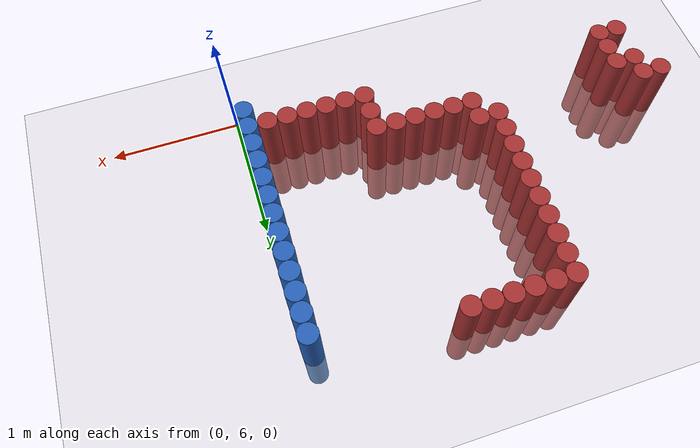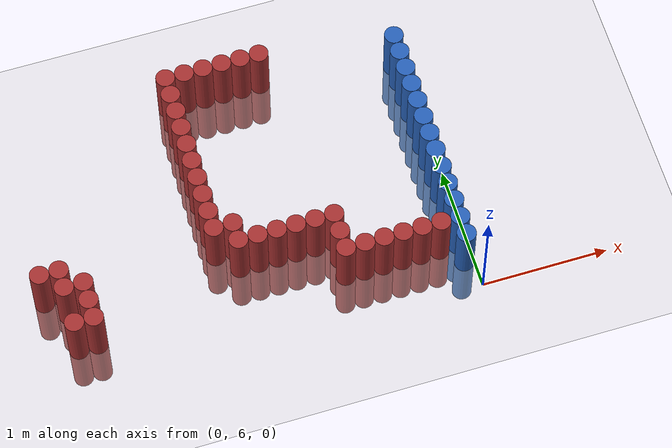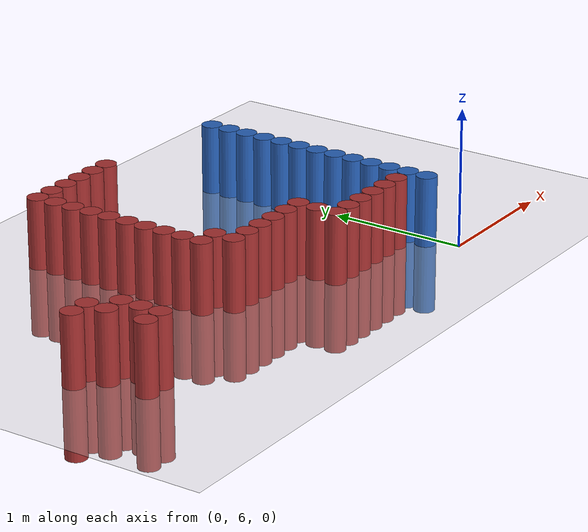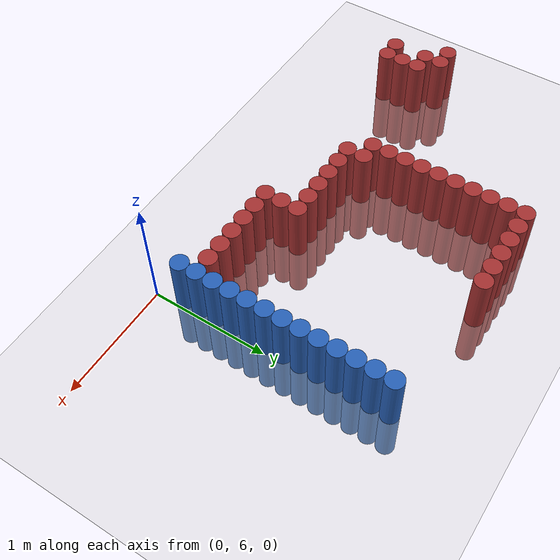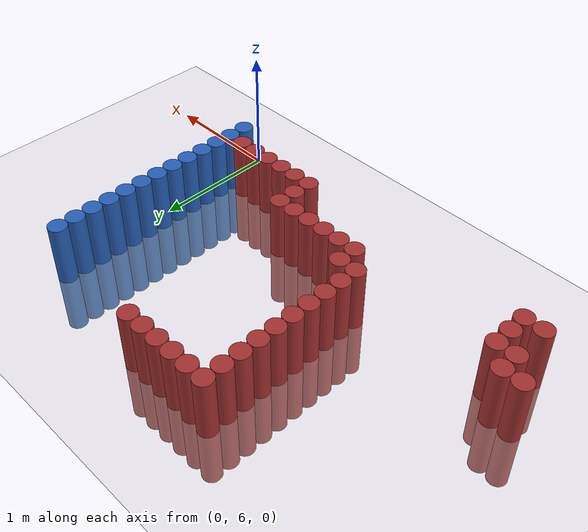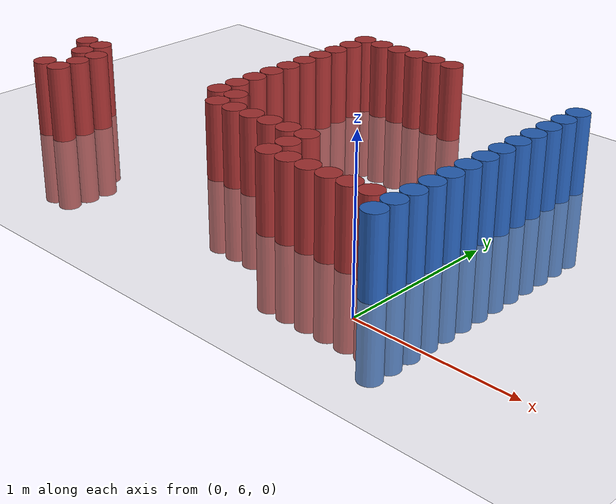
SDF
<sdf version="1.6">
 <world name="default">
  <model name="ground_plane">
   <static>1</static>
   <link name="link">
    <collision name="collision">
     <geometry><plane><normal>0 0 1</normal><size>100 100</size></plane></geometry>
     <surface><friction><ode><mu>100</mu><mu2>50</mu2></ode></friction></surface>
    </collision>
    <visual name="visual">
     <cast_shadows>0</cast_shadows>
     <geometry><plane><normal>0 0 1</normal><size>100 100</size></plane></geometry>
     <material>
      <script><uri>file://media/materials/scripts/gazebo.material</uri><name>Gazebo/Grey</name></script>
     </material>
    </visual>
   </link>
  </model>
  <model name="unit_cylinder_166">
   <static>1</static>
   <pose>-3.225000 6.825000 0.000000 0.000000 0.000000 0.000000</pose>
   <link name="link">
    <inertial>
     <mass>1</mass>
     <inertia><ixx>0.145833</ixx><ixy>0</ixy><ixz>0</ixz><iyy>0.145833</iyy><iyz>0</iyz><izz>0.125</izz></inertia>
    </inertial>
    <collision name="collision">
     <geometry><cylinder><radius>0.075000</radius><length>1</length></cylinder></geometry>
    </collision>
    <visual name="visual">
     <geometry><cylinder><radius>0.075000</radius><length>1</length></cylinder></geometry>
     <material>
      <ambient>0.648000 0.192000 0.192000 1</ambient>
      <diffuse>0.648000 0.192000 0.192000 1</diffuse>
     </material>
     <material>
      <script><name>Gazebo/Grey</name><uri>file://media/materials/scripts/gazebo.material</uri></script>
     </material>
    </visual>
   </link>
  </model>
  <model name="unit_cylinder_174">
   <static>1</static>
   <pose>-3.075000 6.375000 0.000000 0.000000 0.000000 0.000000</pose>
   <link name="link">
    <inertial>
     <mass>1</mass>
     <inertia><ixx>0.145833</ixx><ixy>0</ixy><ixz>0</ixz><iyy>0.145833</iyy><iyz>0</iyz><izz>0.125</izz></inertia>
    </inertial>
    <collision name="collision">
     <geometry><cylinder><radius>0.075000</radius><length>1</length></cylinder></geometry>
    </collision>
    <visual name="visual">
     <geometry><cylinder><radius>0.075000</radius><length>1</length></cylinder></geometry>
     <material>
      <ambient>0.648000 0.192000 0.192000 1</ambient>
      <diffuse>0.648000 0.192000 0.192000 1</diffuse>
     </material>
     <material>
      <script><name>Gazebo/Grey</name><uri>file://media/materials/scripts/gazebo.material</uri></script>
     </material>
    </visual>
   </link>
  </model>
  <model name="unit_cylinder_175">
   <static>1</static>
   <pose>-3.075000 6.675000 0.000000 0.000000 0.000000 0.000000</pose>
   <link name="link">
    <inertial>
     <mass>1</mass>
     <inertia><ixx>0.145833</ixx><ixy>0</ixy><ixz>0</ixz><iyy>0.145833</iyy><iyz>0</iyz><izz>0.125</izz></inertia>
    </inertial>
    <collision name="collision">
     <geometry><cylinder><radius>0.075000</radius><length>1</length></cylinder></geometry>
    </collision>
    <visual name="visual">
     <geometry><cylinder><radius>0.075000</radius><length>1</length></cylinder></geometry>
     <material>
      <ambient>0.648000 0.192000 0.192000 1</ambient>
      <diffuse>0.648000 0.192000 0.192000 1</diffuse>
     </material>
     <material>
      <script><name>Gazebo/Grey</name><uri>file://media/materials/scripts/gazebo.material</uri></script>
     </material>
    </visual>
   </link>
  </model>
  <model name="unit_cylinder_176">
   <static>1</static>
   <pose>-3.075000 6.825000 0.000000 0.000000 0.000000 0.000000</pose>
   <link name="link">
    <inertial>
     <mass>1</mass>
     <inertia><ixx>0.145833</ixx><ixy>0</ixy><ixz>0</ixz><iyy>0.145833</iyy><iyz>0</iyz><izz>0.125</izz></inertia>
    </inertial>
    <collision name="collision">
     <geometry><cylinder><radius>0.075000</radius><length>1</length></cylinder></geometry>
    </collision>
    <visual name="visual">
     <geometry><cylinder><radius>0.075000</radius><length>1</length></cylinder></geometry>
     <material>
      <ambient>0.648000 0.192000 0.192000 1</ambient>
      <diffuse>0.648000 0.192000 0.192000 1</diffuse>
     </material>
     <material>
      <script><name>Gazebo/Grey</name><uri>file://media/materials/scripts/gazebo.material</uri></script>
     </material>
    </visual>
   </link>
  </model>
  <model name="unit_cylinder_179">
   <static>1</static>
   <pose>-2.925000 6.375000 0.000000 0.000000 0.000000 0.000000</pose>
   <link name="link">
    <inertial>
     <mass>1</mass>
     <inertia><ixx>0.145833</ixx><ixy>0</ixy><ixz>0</ixz><iyy>0.145833</iyy><iyz>0</iyz><izz>0.125</izz></inertia>
    </inertial>
    <collision name="collision">
     <geometry><cylinder><radius>0.075000</radius><length>1</length></cylinder></geometry>
    </collision>
    <visual name="visual">
     <geometry><cylinder><radius>0.075000</radius><length>1</length></cylinder></geometry>
     <material>
      <ambient>0.648000 0.192000 0.192000 1</ambient>
      <diffuse>0.648000 0.192000 0.192000 1</diffuse>
     </material>
     <material>
      <script><name>Gazebo/Grey</name><uri>file://media/materials/scripts/gazebo.material</uri></script>
     </material>
    </visual>
   </link>
  </model>
  <model name="unit_cylinder_180">
   <static>1</static>
   <pose>-2.925000 6.525000 0.000000 0.000000 0.000000 0.000000</pose>
   <link name="link">
    <inertial>
     <mass>1</mass>
     <inertia><ixx>0.145833</ixx><ixy>0</ixy><ixz>0</ixz><iyy>0.145833</iyy><iyz>0</iyz><izz>0.125</izz></inertia>
    </inertial>
    <collision name="collision">
     <geometry><cylinder><radius>0.075000</radius><length>1</length></cylinder></geometry>
    </collision>
    <visual name="visual">
     <geometry><cylinder><radius>0.075000</radius><length>1</length></cylinder></geometry>
     <material>
      <ambient>0.648000 0.192000 0.192000 1</ambient>
      <diffuse>0.648000 0.192000 0.192000 1</diffuse>
     </material>
     <material>
      <script><name>Gazebo/Grey</name><uri>file://media/materials/scripts/gazebo.material</uri></script>
     </material>
    </visual>
   </link>
  </model>
  <model name="unit_cylinder_181">
   <static>1</static>
   <pose>-2.925000 6.675000 0.000000 0.000000 0.000000 0.000000</pose>
   <link name="link">
    <inertial>
     <mass>1</mass>
     <inertia><ixx>0.145833</ixx><ixy>0</ixy><ixz>0</ixz><iyy>0.145833</iyy><iyz>0</iyz><izz>0.125</izz></inertia>
    </inertial>
    <collision name="collision">
     <geometry><cylinder><radius>0.075000</radius><length>1</length></cylinder></geometry>
    </collision>
    <visual name="visual">
     <geometry><cylinder><radius>0.075000</radius><length>1</length></cylinder></geometry>
     <material>
      <ambient>0.648000 0.192000 0.192000 1</ambient>
      <diffuse>0.648000 0.192000 0.192000 1</diffuse>
     </material>
     <material>
      <script><name>Gazebo/Grey</name><uri>file://media/materials/scripts/gazebo.material</uri></script>
     </material>
    </visual>
   </link>
  </model>
  <model name="unit_cylinder_186">
   <static>1</static>
   <pose>-1.875000 6.825000 0.000000 0.000000 0.000000 0.000000</pose>
   <link name="link">
    <inertial>
     <mass>1</mass>
     <inertia><ixx>0.145833</ixx><ixy>0</ixy><ixz>0</ixz><iyy>0.145833</iyy><iyz>0</iyz><izz>0.125</izz></inertia>
    </inertial>
    <collision name="collision">
     <geometry><cylinder><radius>0.075000</radius><length>1</length></cylinder></geometry>
    </collision>
    <visual name="visual">
     <geometry><cylinder><radius>0.075000</radius><length>1</length></cylinder></geometry>
     <material>
      <ambient>0.648000 0.192000 0.192000 1</ambient>
      <diffuse>0.648000 0.192000 0.192000 1</diffuse>
     </material>
     <material>
      <script><name>Gazebo/Grey</name><uri>file://media/materials/scripts/gazebo.material</uri></script>
     </material>
    </visual>
   </link>
  </model>
  <model name="unit_cylinder_187">
   <static>1</static>
   <pose>-1.875000 6.975000 0.000000 0.000000 0.000000 0.000000</pose>
   <link name="link">
    <inertial>
     <mass>1</mass>
     <inertia><ixx>0.145833</ixx><ixy>0</ixy><ixz>0</ixz><iyy>0.145833</iyy><iyz>0</iyz><izz>0.125</izz></inertia>
    </inertial>
    <collision name="collision">
     <geometry><cylinder><radius>0.075000</radius><length>1</length></cylinder></geometry>
    </collision>
    <visual name="visual">
     <geometry><cylinder><radius>0.075000</radius><length>1</length></cylinder></geometry>
     <material>
      <ambient>0.648000 0.192000 0.192000 1</ambient>
      <diffuse>0.648000 0.192000 0.192000 1</diffuse>
     </material>
     <material>
      <script><name>Gazebo/Grey</name><uri>file://media/materials/scripts/gazebo.material</uri></script>
     </material>
    </visual>
   </link>
  </model>
  <model name="unit_cylinder_188">
   <static>1</static>
   <pose>-1.875000 7.125000 0.000000 0.000000 0.000000 0.000000</pose>
   <link name="link">
    <inertial>
     <mass>1</mass>
     <inertia><ixx>0.145833</ixx><ixy>0</ixy><ixz>0</ixz><iyy>0.145833</iyy><iyz>0</iyz><izz>0.125</izz></inertia>
    </inertial>
    <collision name="collision">
     <geometry><cylinder><radius>0.075000</radius><length>1</length></cylinder></geometry>
    </collision>
    <visual name="visual">
     <geometry><cylinder><radius>0.075000</radius><length>1</length></cylinder></geometry>
     <material>
      <ambient>0.648000 0.192000 0.192000 1</ambient>
      <diffuse>0.648000 0.192000 0.192000 1</diffuse>
     </material>
     <material>
      <script><name>Gazebo/Grey</name><uri>file://media/materials/scripts/gazebo.material</uri></script>
     </material>
    </visual>
   </link>
  </model>
  <model name="unit_cylinder_189">
   <static>1</static>
   <pose>-1.875000 7.275000 0.000000 0.000000 0.000000 0.000000</pose>
   <link name="link">
    <inertial>
     <mass>1</mass>
     <inertia><ixx>0.145833</ixx><ixy>0</ixy><ixz>0</ixz><iyy>0.145833</iyy><iyz>0</iyz><izz>0.125</izz></inertia>
    </inertial>
    <collision name="collision">
     <geometry><cylinder><radius>0.075000</radius><length>1</length></cylinder></geometry>
    </collision>
    <visual name="visual">
     <geometry><cylinder><radius>0.075000</radius><length>1</length></cylinder></geometry>
     <material>
      <ambient>0.648000 0.192000 0.192000 1</ambient>
      <diffuse>0.648000 0.192000 0.192000 1</diffuse>
     </material>
     <material>
      <script><name>Gazebo/Grey</name><uri>file://media/materials/scripts/gazebo.material</uri></script>
     </material>
    </visual>
   </link>
  </model>
  <model name="unit_cylinder_190">
   <static>1</static>
   <pose>-1.875000 7.425000 0.000000 0.000000 0.000000 0.000000</pose>
   <link name="link">
    <inertial>
     <mass>1</mass>
     <inertia><ixx>0.145833</ixx><ixy>0</ixy><ixz>0</ixz><iyy>0.145833</iyy><iyz>0</iyz><izz>0.125</izz></inertia>
    </inertial>
    <collision name="collision">
     <geometry><cylinder><radius>0.075000</radius><length>1</length></cylinder></geometry>
    </collision>
    <visual name="visual">
     <geometry><cylinder><radius>0.075000</radius><length>1</length></cylinder></geometry>
     <material>
      <ambient>0.648000 0.192000 0.192000 1</ambient>
      <diffuse>0.648000 0.192000 0.192000 1</diffuse>
     </material>
     <material>
      <script><name>Gazebo/Grey</name><uri>file://media/materials/scripts/gazebo.material</uri></script>
     </material>
    </visual>
   </link>
  </model>
  <model name="unit_cylinder_191">
   <static>1</static>
   <pose>-1.875000 7.575000 0.000000 0.000000 0.000000 0.000000</pose>
   <link name="link">
    <inertial>
     <mass>1</mass>
     <inertia><ixx>0.145833</ixx><ixy>0</ixy><ixz>0</ixz><iyy>0.145833</iyy><iyz>0</iyz><izz>0.125</izz></inertia>
    </inertial>
    <collision name="collision">
     <geometry><cylinder><radius>0.075000</radius><length>1</length></cylinder></geometry>
    </collision>
    <visual name="visual">
     <geometry><cylinder><radius>0.075000</radius><length>1</length></cylinder></geometry>
     <material>
      <ambient>0.648000 0.192000 0.192000 1</ambient>
      <diffuse>0.648000 0.192000 0.192000 1</diffuse>
     </material>
     <material>
      <script><name>Gazebo/Grey</name><uri>file://media/materials/scripts/gazebo.material</uri></script>
     </material>
    </visual>
   </link>
  </model>
  <model name="unit_cylinder_192">
   <static>1</static>
   <pose>-1.875000 7.725000 0.000000 0.000000 0.000000 0.000000</pose>
   <link name="link">
    <inertial>
     <mass>1</mass>
     <inertia><ixx>0.145833</ixx><ixy>0</ixy><ixz>0</ixz><iyy>0.145833</iyy><iyz>0</iyz><izz>0.125</izz></inertia>
    </inertial>
    <collision name="collision">
     <geometry><cylinder><radius>0.075000</radius><length>1</length></cylinder></geometry>
    </collision>
    <visual name="visual">
     <geometry><cylinder><radius>0.075000</radius><length>1</length></cylinder></geometry>
     <material>
      <ambient>0.648000 0.192000 0.192000 1</ambient>
      <diffuse>0.648000 0.192000 0.192000 1</diffuse>
     </material>
     <material>
      <script><name>Gazebo/Grey</name><uri>file://media/materials/scripts/gazebo.material</uri></script>
     </material>
    </visual>
   </link>
  </model>
  <model name="unit_cylinder_193">
   <static>1</static>
   <pose>-1.875000 7.875000 0.000000 0.000000 0.000000 0.000000</pose>
   <link name="link">
    <inertial>
     <mass>1</mass>
     <inertia><ixx>0.145833</ixx><ixy>0</ixy><ixz>0</ixz><iyy>0.145833</iyy><iyz>0</iyz><izz>0.125</izz></inertia>
    </inertial>
    <collision name="collision">
     <geometry><cylinder><radius>0.075000</radius><length>1</length></cylinder></geometry>
    </collision>
    <visual name="visual">
     <geometry><cylinder><radius>0.075000</radius><length>1</length></cylinder></geometry>
     <material>
      <ambient>0.648000 0.192000 0.192000 1</ambient>
      <diffuse>0.648000 0.192000 0.192000 1</diffuse>
     </material>
     <material>
      <script><name>Gazebo/Grey</name><uri>file://media/materials/scripts/gazebo.material</uri></script>
     </material>
    </visual>
   </link>
  </model>
  <model name="unit_cylinder_194">
   <static>1</static>
   <pose>-1.875000 8.025000 0.000000 0.000000 0.000000 0.000000</pose>
   <link name="link">
    <inertial>
     <mass>1</mass>
     <inertia><ixx>0.145833</ixx><ixy>0</ixy><ixz>0</ixz><iyy>0.145833</iyy><iyz>0</iyz><izz>0.125</izz></inertia>
    </inertial>
    <collision name="collision">
     <geometry><cylinder><radius>0.075000</radius><length>1</length></cylinder></geometry>
    </collision>
    <visual name="visual">
     <geometry><cylinder><radius>0.075000</radius><length>1</length></cylinder></geometry>
     <material>
      <ambient>0.648000 0.192000 0.192000 1</ambient>
      <diffuse>0.648000 0.192000 0.192000 1</diffuse>
     </material>
     <material>
      <script><name>Gazebo/Grey</name><uri>file://media/materials/scripts/gazebo.material</uri></script>
     </material>
    </visual>
   </link>
  </model>
  <model name="unit_cylinder_195">
   <static>1</static>
   <pose>-1.875000 8.175000 0.000000 0.000000 0.000000 0.000000</pose>
   <link name="link">
    <inertial>
     <mass>1</mass>
     <inertia><ixx>0.145833</ixx><ixy>0</ixy><ixz>0</ixz><iyy>0.145833</iyy><iyz>0</iyz><izz>0.125</izz></inertia>
    </inertial>
    <collision name="collision">
     <geometry><cylinder><radius>0.075000</radius><length>1</length></cylinder></geometry>
    </collision>
    <visual name="visual">
     <geometry><cylinder><radius>0.075000</radius><length>1</length></cylinder></geometry>
     <material>
      <ambient>0.648000 0.192000 0.192000 1</ambient>
      <diffuse>0.648000 0.192000 0.192000 1</diffuse>
     </material>
     <material>
      <script><name>Gazebo/Grey</name><uri>file://media/materials/scripts/gazebo.material</uri></script>
     </material>
    </visual>
   </link>
  </model>
  <model name="unit_cylinder_196">
   <static>1</static>
   <pose>-1.725000 6.675000 0.000000 0.000000 0.000000 0.000000</pose>
   <link name="link">
    <inertial>
     <mass>1</mass>
     <inertia><ixx>0.145833</ixx><ixy>0</ixy><ixz>0</ixz><iyy>0.145833</iyy><iyz>0</iyz><izz>0.125</izz></inertia>
    </inertial>
    <collision name="collision">
     <geometry><cylinder><radius>0.075000</radius><length>1</length></cylinder></geometry>
    </collision>
    <visual name="visual">
     <geometry><cylinder><radius>0.075000</radius><length>1</length></cylinder></geometry>
     <material>
      <ambient>0.648000 0.192000 0.192000 1</ambient>
      <diffuse>0.648000 0.192000 0.192000 1</diffuse>
     </material>
     <material>
      <script><name>Gazebo/Grey</name><uri>file://media/materials/scripts/gazebo.material</uri></script>
     </material>
    </visual>
   </link>
  </model>
  <model name="unit_cylinder_197">
   <static>1</static>
   <pose>-1.725000 6.825000 0.000000 0.000000 0.000000 0.000000</pose>
   <link name="link">
    <inertial>
     <mass>1</mass>
     <inertia><ixx>0.145833</ixx><ixy>0</ixy><ixz>0</ixz><iyy>0.145833</iyy><iyz>0</iyz><izz>0.125</izz></inertia>
    </inertial>
    <collision name="collision">
     <geometry><cylinder><radius>0.075000</radius><length>1</length></cylinder></geometry>
    </collision>
    <visual name="visual">
     <geometry><cylinder><radius>0.075000</radius><length>1</length></cylinder></geometry>
     <material>
      <ambient>0.648000 0.192000 0.192000 1</ambient>
      <diffuse>0.648000 0.192000 0.192000 1</diffuse>
     </material>
     <material>
      <script><name>Gazebo/Grey</name><uri>file://media/materials/scripts/gazebo.material</uri></script>
     </material>
    </visual>
   </link>
  </model>
  <model name="unit_cylinder_198">
   <static>1</static>
   <pose>-1.725000 8.175000 0.000000 0.000000 0.000000 0.000000</pose>
   <link name="link">
    <inertial>
     <mass>1</mass>
     <inertia><ixx>0.145833</ixx><ixy>0</ixy><ixz>0</ixz><iyy>0.145833</iyy><iyz>0</iyz><izz>0.125</izz></inertia>
    </inertial>
    <collision name="collision">
     <geometry><cylinder><radius>0.075000</radius><length>1</length></cylinder></geometry>
    </collision>
    <visual name="visual">
     <geometry><cylinder><radius>0.075000</radius><length>1</length></cylinder></geometry>
     <material>
      <ambient>0.648000 0.192000 0.192000 1</ambient>
      <diffuse>0.648000 0.192000 0.192000 1</diffuse>
     </material>
     <material>
      <script><name>Gazebo/Grey</name><uri>file://media/materials/scripts/gazebo.material</uri></script>
     </material>
    </visual>
   </link>
  </model>
  <model name="unit_cylinder_204">
   <static>1</static>
   <pose>-1.575000 6.675000 0.000000 0.000000 0.000000 0.000000</pose>
   <link name="link">
    <inertial>
     <mass>1</mass>
     <inertia><ixx>0.145833</ixx><ixy>0</ixy><ixz>0</ixz><iyy>0.145833</iyy><iyz>0</iyz><izz>0.125</izz></inertia>
    </inertial>
    <collision name="collision">
     <geometry><cylinder><radius>0.075000</radius><length>1</length></cylinder></geometry>
    </collision>
    <visual name="visual">
     <geometry><cylinder><radius>0.075000</radius><length>1</length></cylinder></geometry>
     <material>
      <ambient>0.648000 0.192000 0.192000 1</ambient>
      <diffuse>0.648000 0.192000 0.192000 1</diffuse>
     </material>
     <material>
      <script><name>Gazebo/Grey</name><uri>file://media/materials/scripts/gazebo.material</uri></script>
     </material>
    </visual>
   </link>
  </model>
  <model name="unit_cylinder_205">
   <static>1</static>
   <pose>-1.575000 8.175000 0.000000 0.000000 0.000000 0.000000</pose>
   <link name="link">
    <inertial>
     <mass>1</mass>
     <inertia><ixx>0.145833</ixx><ixy>0</ixy><ixz>0</ixz><iyy>0.145833</iyy><iyz>0</iyz><izz>0.125</izz></inertia>
    </inertial>
    <collision name="collision">
     <geometry><cylinder><radius>0.075000</radius><length>1</length></cylinder></geometry>
    </collision>
    <visual name="visual">
     <geometry><cylinder><radius>0.075000</radius><length>1</length></cylinder></geometry>
     <material>
      <ambient>0.648000 0.192000 0.192000 1</ambient>
      <diffuse>0.648000 0.192000 0.192000 1</diffuse>
     </material>
     <material>
      <script><name>Gazebo/Grey</name><uri>file://media/materials/scripts/gazebo.material</uri></script>
     </material>
    </visual>
   </link>
  </model>
  <model name="unit_cylinder_208">
   <static>1</static>
   <pose>-1.425000 6.675000 0.000000 0.000000 0.000000 0.000000</pose>
   <link name="link">
    <inertial>
     <mass>1</mass>
     <inertia><ixx>0.145833</ixx><ixy>0</ixy><ixz>0</ixz><iyy>0.145833</iyy><iyz>0</iyz><izz>0.125</izz></inertia>
    </inertial>
    <collision name="collision">
     <geometry><cylinder><radius>0.075000</radius><length>1</length></cylinder></geometry>
    </collision>
    <visual name="visual">
     <geometry><cylinder><radius>0.075000</radius><length>1</length></cylinder></geometry>
     <material>
      <ambient>0.648000 0.192000 0.192000 1</ambient>
      <diffuse>0.648000 0.192000 0.192000 1</diffuse>
     </material>
     <material>
      <script><name>Gazebo/Grey</name><uri>file://media/materials/scripts/gazebo.material</uri></script>
     </material>
    </visual>
   </link>
  </model>
  <model name="unit_cylinder_209">
   <static>1</static>
   <pose>-1.425000 8.175000 0.000000 0.000000 0.000000 0.000000</pose>
   <link name="link">
    <inertial>
     <mass>1</mass>
     <inertia><ixx>0.145833</ixx><ixy>0</ixy><ixz>0</ixz><iyy>0.145833</iyy><iyz>0</iyz><izz>0.125</izz></inertia>
    </inertial>
    <collision name="collision">
     <geometry><cylinder><radius>0.075000</radius><length>1</length></cylinder></geometry>
    </collision>
    <visual name="visual">
     <geometry><cylinder><radius>0.075000</radius><length>1</length></cylinder></geometry>
     <material>
      <ambient>0.648000 0.192000 0.192000 1</ambient>
      <diffuse>0.648000 0.192000 0.192000 1</diffuse>
     </material>
     <material>
      <script><name>Gazebo/Grey</name><uri>file://media/materials/scripts/gazebo.material</uri></script>
     </material>
    </visual>
   </link>
  </model>
  <model name="unit_cylinder_213">
   <static>1</static>
   <pose>-1.275000 6.675000 0.000000 0.000000 0.000000 0.000000</pose>
   <link name="link">
    <inertial>
     <mass>1</mass>
     <inertia><ixx>0.145833</ixx><ixy>0</ixy><ixz>0</ixz><iyy>0.145833</iyy><iyz>0</iyz><izz>0.125</izz></inertia>
    </inertial>
    <collision name="collision">
     <geometry><cylinder><radius>0.075000</radius><length>1</length></cylinder></geometry>
    </collision>
    <visual name="visual">
     <geometry><cylinder><radius>0.075000</radius><length>1</length></cylinder></geometry>
     <material>
      <ambient>0.648000 0.192000 0.192000 1</ambient>
      <diffuse>0.648000 0.192000 0.192000 1</diffuse>
     </material>
     <material>
      <script><name>Gazebo/Grey</name><uri>file://media/materials/scripts/gazebo.material</uri></script>
     </material>
    </visual>
   </link>
  </model>
  <model name="unit_cylinder_214">
   <static>1</static>
   <pose>-1.275000 8.175000 0.000000 0.000000 0.000000 0.000000</pose>
   <link name="link">
    <inertial>
     <mass>1</mass>
     <inertia><ixx>0.145833</ixx><ixy>0</ixy><ixz>0</ixz><iyy>0.145833</iyy><iyz>0</iyz><izz>0.125</izz></inertia>
    </inertial>
    <collision name="collision">
     <geometry><cylinder><radius>0.075000</radius><length>1</length></cylinder></geometry>
    </collision>
    <visual name="visual">
     <geometry><cylinder><radius>0.075000</radius><length>1</length></cylinder></geometry>
     <material>
      <ambient>0.648000 0.192000 0.192000 1</ambient>
      <diffuse>0.648000 0.192000 0.192000 1</diffuse>
     </material>
     <material>
      <script><name>Gazebo/Grey</name><uri>file://media/materials/scripts/gazebo.material</uri></script>
     </material>
    </visual>
   </link>
  </model>
  <model name="unit_cylinder_218">
   <static>1</static>
   <pose>-1.125000 6.675000 0.000000 0.000000 0.000000 0.000000</pose>
   <link name="link">
    <inertial>
     <mass>1</mass>
     <inertia><ixx>0.145833</ixx><ixy>0</ixy><ixz>0</ixz><iyy>0.145833</iyy><iyz>0</iyz><izz>0.125</izz></inertia>
    </inertial>
    <collision name="collision">
     <geometry><cylinder><radius>0.075000</radius><length>1</length></cylinder></geometry>
    </collision>
    <visual name="visual">
     <geometry><cylinder><radius>0.075000</radius><length>1</length></cylinder></geometry>
     <material>
      <ambient>0.648000 0.192000 0.192000 1</ambient>
      <diffuse>0.648000 0.192000 0.192000 1</diffuse>
     </material>
     <material>
      <script><name>Gazebo/Grey</name><uri>file://media/materials/scripts/gazebo.material</uri></script>
     </material>
    </visual>
   </link>
  </model>
  <model name="unit_cylinder_219">
   <static>1</static>
   <pose>-1.125000 8.175000 0.000000 0.000000 0.000000 0.000000</pose>
   <link name="link">
    <inertial>
     <mass>1</mass>
     <inertia><ixx>0.145833</ixx><ixy>0</ixy><ixz>0</ixz><iyy>0.145833</iyy><iyz>0</iyz><izz>0.125</izz></inertia>
    </inertial>
    <collision name="collision">
     <geometry><cylinder><radius>0.075000</radius><length>1</length></cylinder></geometry>
    </collision>
    <visual name="visual">
     <geometry><cylinder><radius>0.075000</radius><length>1</length></cylinder></geometry>
     <material>
      <ambient>0.648000 0.192000 0.192000 1</ambient>
      <diffuse>0.648000 0.192000 0.192000 1</diffuse>
     </material>
     <material>
      <script><name>Gazebo/Grey</name><uri>file://media/materials/scripts/gazebo.material</uri></script>
     </material>
    </visual>
   </link>
  </model>
  <model name="unit_cylinder_227">
   <static>1</static>
   <pose>-0.975000 6.375000 0.000000 0.000000 0.000000 0.000000</pose>
   <link name="link">
    <inertial>
     <mass>1</mass>
     <inertia><ixx>0.145833</ixx><ixy>0</ixy><ixz>0</ixz><iyy>0.145833</iyy><iyz>0</iyz><izz>0.125</izz></inertia>
    </inertial>
    <collision name="collision">
     <geometry><cylinder><radius>0.075000</radius><length>1</length></cylinder></geometry>
    </collision>
    <visual name="visual">
     <geometry><cylinder><radius>0.075000</radius><length>1</length></cylinder></geometry>
     <material>
      <ambient>0.648000 0.192000 0.192000 1</ambient>
      <diffuse>0.648000 0.192000 0.192000 1</diffuse>
     </material>
     <material>
      <script><name>Gazebo/Grey</name><uri>file://media/materials/scripts/gazebo.material</uri></script>
     </material>
    </visual>
   </link>
  </model>
  <model name="unit_cylinder_228">
   <static>1</static>
   <pose>-0.975000 6.525000 0.000000 0.000000 0.000000 0.000000</pose>
   <link name="link">
    <inertial>
     <mass>1</mass>
     <inertia><ixx>0.145833</ixx><ixy>0</ixy><ixz>0</ixz><iyy>0.145833</iyy><iyz>0</iyz><izz>0.125</izz></inertia>
    </inertial>
    <collision name="collision">
     <geometry><cylinder><radius>0.075000</radius><length>1</length></cylinder></geometry>
    </collision>
    <visual name="visual">
     <geometry><cylinder><radius>0.075000</radius><length>1</length></cylinder></geometry>
     <material>
      <ambient>0.648000 0.192000 0.192000 1</ambient>
      <diffuse>0.648000 0.192000 0.192000 1</diffuse>
     </material>
     <material>
      <script><name>Gazebo/Grey</name><uri>file://media/materials/scripts/gazebo.material</uri></script>
     </material>
    </visual>
   </link>
  </model>
  <model name="unit_cylinder_229">
   <static>1</static>
   <pose>-0.975000 6.675000 0.000000 0.000000 0.000000 0.000000</pose>
   <link name="link">
    <inertial>
     <mass>1</mass>
     <inertia><ixx>0.145833</ixx><ixy>0</ixy><ixz>0</ixz><iyy>0.145833</iyy><iyz>0</iyz><izz>0.125</izz></inertia>
    </inertial>
    <collision name="collision">
     <geometry><cylinder><radius>0.075000</radius><length>1</length></cylinder></geometry>
    </collision>
    <visual name="visual">
     <geometry><cylinder><radius>0.075000</radius><length>1</length></cylinder></geometry>
     <material>
      <ambient>0.648000 0.192000 0.192000 1</ambient>
      <diffuse>0.648000 0.192000 0.192000 1</diffuse>
     </material>
     <material>
      <script><name>Gazebo/Grey</name><uri>file://media/materials/scripts/gazebo.material</uri></script>
     </material>
    </visual>
   </link>
  </model>
  <model name="unit_cylinder_236">
   <static>1</static>
   <pose>-0.825000 6.375000 0.000000 0.000000 0.000000 0.000000</pose>
   <link name="link">
    <inertial>
     <mass>1</mass>
     <inertia><ixx>0.145833</ixx><ixy>0</ixy><ixz>0</ixz><iyy>0.145833</iyy><iyz>0</iyz><izz>0.125</izz></inertia>
    </inertial>
    <collision name="collision">
     <geometry><cylinder><radius>0.075000</radius><length>1</length></cylinder></geometry>
    </collision>
    <visual name="visual">
     <geometry><cylinder><radius>0.075000</radius><length>1</length></cylinder></geometry>
     <material>
      <ambient>0.648000 0.192000 0.192000 1</ambient>
      <diffuse>0.648000 0.192000 0.192000 1</diffuse>
     </material>
     <material>
      <script><name>Gazebo/Grey</name><uri>file://media/materials/scripts/gazebo.material</uri></script>
     </material>
    </visual>
   </link>
  </model>
  <model name="unit_cylinder_243">
   <static>1</static>
   <pose>-0.675000 6.375000 0.000000 0.000000 0.000000 0.000000</pose>
   <link name="link">
    <inertial>
     <mass>1</mass>
     <inertia><ixx>0.145833</ixx><ixy>0</ixy><ixz>0</ixz><iyy>0.145833</iyy><iyz>0</iyz><izz>0.125</izz></inertia>
    </inertial>
    <collision name="collision">
     <geometry><cylinder><radius>0.075000</radius><length>1</length></cylinder></geometry>
    </collision>
    <visual name="visual">
     <geometry><cylinder><radius>0.075000</radius><length>1</length></cylinder></geometry>
     <material>
      <ambient>0.648000 0.192000 0.192000 1</ambient>
      <diffuse>0.648000 0.192000 0.192000 1</diffuse>
     </material>
     <material>
      <script><name>Gazebo/Grey</name><uri>file://media/materials/scripts/gazebo.material</uri></script>
     </material>
    </visual>
   </link>
  </model>
  <model name="unit_cylinder_250">
   <static>1</static>
   <pose>-0.525000 6.375000 0.000000 0.000000 0.000000 0.000000</pose>
   <link name="link">
    <inertial>
     <mass>1</mass>
     <inertia><ixx>0.145833</ixx><ixy>0</ixy><ixz>0</ixz><iyy>0.145833</iyy><iyz>0</iyz><izz>0.125</izz></inertia>
    </inertial>
    <collision name="collision">
     <geometry><cylinder><radius>0.075000</radius><length>1</length></cylinder></geometry>
    </collision>
    <visual name="visual">
     <geometry><cylinder><radius>0.075000</radius><length>1</length></cylinder></geometry>
     <material>
      <ambient>0.648000 0.192000 0.192000 1</ambient>
      <diffuse>0.648000 0.192000 0.192000 1</diffuse>
     </material>
     <material>
      <script><name>Gazebo/Grey</name><uri>file://media/materials/scripts/gazebo.material</uri></script>
     </material>
    </visual>
   </link>
  </model>
  <model name="unit_cylinder_258">
   <static>1</static>
   <pose>-0.375000 6.375000 0.000000 0.000000 0.000000 0.000000</pose>
   <link name="link">
    <inertial>
     <mass>1</mass>
     <inertia><ixx>0.145833</ixx><ixy>0</ixy><ixz>0</ixz><iyy>0.145833</iyy><iyz>0</iyz><izz>0.125</izz></inertia>
    </inertial>
    <collision name="collision">
     <geometry><cylinder><radius>0.075000</radius><length>1</length></cylinder></geometry>
    </collision>
    <visual name="visual">
     <geometry><cylinder><radius>0.075000</radius><length>1</length></cylinder></geometry>
     <material>
      <ambient>0.648000 0.192000 0.192000 1</ambient>
      <diffuse>0.648000 0.192000 0.192000 1</diffuse>
     </material>
     <material>
      <script><name>Gazebo/Grey</name><uri>file://media/materials/scripts/gazebo.material</uri></script>
     </material>
    </visual>
   </link>
  </model>
  <model name="unit_cylinder_262">
   <static>1</static>
   <pose>-0.225000 6.375000 0.000000 0.000000 0.000000 0.000000</pose>
   <link name="link">
    <inertial>
     <mass>1</mass>
     <inertia><ixx>0.145833</ixx><ixy>0</ixy><ixz>0</ixz><iyy>0.145833</iyy><iyz>0</iyz><izz>0.125</izz></inertia>
    </inertial>
    <collision name="collision">
     <geometry><cylinder><radius>0.075000</radius><length>1</length></cylinder></geometry>
    </collision>
    <visual name="visual">
     <geometry><cylinder><radius>0.075000</radius><length>1</length></cylinder></geometry>
     <material>
      <ambient>0.648000 0.192000 0.192000 1</ambient>
      <diffuse>0.648000 0.192000 0.192000 1</diffuse>
     </material>
     <material>
      <script><name>Gazebo/Grey</name><uri>file://media/materials/scripts/gazebo.material</uri></script>
     </material>
    </visual>
   </link>
  </model>
  <model name="unit_cylinder_271">
   <static>1</static>
   <pose>-0.075000 6.225000 0.000000 0.000000 0.000000 0.000000</pose>
   <link name="link">
    <inertial>
     <mass>1</mass>
     <inertia><ixx>0.145833</ixx><ixy>0</ixy><ixz>0</ixz><iyy>0.145833</iyy><iyz>0</iyz><izz>0.125</izz></inertia>
    </inertial>
    <collision name="collision">
     <geometry><cylinder><radius>0.075000</radius><length>1</length></cylinder></geometry>
    </collision>
    <visual name="visual">
     <geometry><cylinder><radius>0.075000</radius><length>1</length></cylinder></geometry>
     <material>
      <ambient>0.152000 0.379000 0.720000 1</ambient>
      <diffuse>0.152000 0.379000 0.720000 1</diffuse>
     </material>
     <material>
      <script><name>Gazebo/Grey</name><uri>file://media/materials/scripts/gazebo.material</uri></script>
     </material>
    </visual>
   </link>
  </model>
  <model name="unit_cylinder_272">
   <static>1</static>
   <pose>-0.075000 6.375000 0.000000 0.000000 0.000000 0.000000</pose>
   <link name="link">
    <inertial>
     <mass>1</mass>
     <inertia><ixx>0.145833</ixx><ixy>0</ixy><ixz>0</ixz><iyy>0.145833</iyy><iyz>0</iyz><izz>0.125</izz></inertia>
    </inertial>
    <collision name="collision">
     <geometry><cylinder><radius>0.075000</radius><length>1</length></cylinder></geometry>
    </collision>
    <visual name="visual">
     <geometry><cylinder><radius>0.075000</radius><length>1</length></cylinder></geometry>
     <material>
      <ambient>0.152000 0.379000 0.720000 1</ambient>
      <diffuse>0.152000 0.379000 0.720000 1</diffuse>
     </material>
     <material>
      <script><name>Gazebo/Grey</name><uri>file://media/materials/scripts/gazebo.material</uri></script>
     </material>
    </visual>
   </link>
  </model>
  <model name="unit_cylinder_273">
   <static>1</static>
   <pose>-0.075000 6.525000 0.000000 0.000000 0.000000 0.000000</pose>
   <link name="link">
    <inertial>
     <mass>1</mass>
     <inertia><ixx>0.145833</ixx><ixy>0</ixy><ixz>0</ixz><iyy>0.145833</iyy><iyz>0</iyz><izz>0.125</izz></inertia>
    </inertial>
    <collision name="collision">
     <geometry><cylinder><radius>0.075000</radius><length>1</length></cylinder></geometry>
    </collision>
    <visual name="visual">
     <geometry><cylinder><radius>0.075000</radius><length>1</length></cylinder></geometry>
     <material>
      <ambient>0.152000 0.379000 0.720000 1</ambient>
      <diffuse>0.152000 0.379000 0.720000 1</diffuse>
     </material>
     <material>
      <script><name>Gazebo/Grey</name><uri>file://media/materials/scripts/gazebo.material</uri></script>
     </material>
    </visual>
   </link>
  </model>
  <model name="unit_cylinder_274">
   <static>1</static>
   <pose>-0.075000 6.675000 0.000000 0.000000 0.000000 0.000000</pose>
   <link name="link">
    <inertial>
     <mass>1</mass>
     <inertia><ixx>0.145833</ixx><ixy>0</ixy><ixz>0</ixz><iyy>0.145833</iyy><iyz>0</iyz><izz>0.125</izz></inertia>
    </inertial>
    <collision name="collision">
     <geometry><cylinder><radius>0.075000</radius><length>1</length></cylinder></geometry>
    </collision>
    <visual name="visual">
     <geometry><cylinder><radius>0.075000</radius><length>1</length></cylinder></geometry>
     <material>
      <ambient>0.152000 0.379000 0.720000 1</ambient>
      <diffuse>0.152000 0.379000 0.720000 1</diffuse>
     </material>
     <material>
      <script><name>Gazebo/Grey</name><uri>file://media/materials/scripts/gazebo.material</uri></script>
     </material>
    </visual>
   </link>
  </model>
  <model name="unit_cylinder_275">
   <static>1</static>
   <pose>-0.075000 6.825000 0.000000 0.000000 0.000000 0.000000</pose>
   <link name="link">
    <inertial>
     <mass>1</mass>
     <inertia><ixx>0.145833</ixx><ixy>0</ixy><ixz>0</ixz><iyy>0.145833</iyy><iyz>0</iyz><izz>0.125</izz></inertia>
    </inertial>
    <collision name="collision">
     <geometry><cylinder><radius>0.075000</radius><length>1</length></cylinder></geometry>
    </collision>
    <visual name="visual">
     <geometry><cylinder><radius>0.075000</radius><length>1</length></cylinder></geometry>
     <material>
      <ambient>0.152000 0.379000 0.720000 1</ambient>
      <diffuse>0.152000 0.379000 0.720000 1</diffuse>
     </material>
     <material>
      <script><name>Gazebo/Grey</name><uri>file://media/materials/scripts/gazebo.material</uri></script>
     </material>
    </visual>
   </link>
  </model>
  <model name="unit_cylinder_276">
   <static>1</static>
   <pose>-0.075000 6.975000 0.000000 0.000000 0.000000 0.000000</pose>
   <link name="link">
    <inertial>
     <mass>1</mass>
     <inertia><ixx>0.145833</ixx><ixy>0</ixy><ixz>0</ixz><iyy>0.145833</iyy><iyz>0</iyz><izz>0.125</izz></inertia>
    </inertial>
    <collision name="collision">
     <geometry><cylinder><radius>0.075000</radius><length>1</length></cylinder></geometry>
    </collision>
    <visual name="visual">
     <geometry><cylinder><radius>0.075000</radius><length>1</length></cylinder></geometry>
     <material>
      <ambient>0.152000 0.379000 0.720000 1</ambient>
      <diffuse>0.152000 0.379000 0.720000 1</diffuse>
     </material>
     <material>
      <script><name>Gazebo/Grey</name><uri>file://media/materials/scripts/gazebo.material</uri></script>
     </material>
    </visual>
   </link>
  </model>
  <model name="unit_cylinder_277">
   <static>1</static>
   <pose>-0.075000 7.125000 0.000000 0.000000 0.000000 0.000000</pose>
   <link name="link">
    <inertial>
     <mass>1</mass>
     <inertia><ixx>0.145833</ixx><ixy>0</ixy><ixz>0</ixz><iyy>0.145833</iyy><iyz>0</iyz><izz>0.125</izz></inertia>
    </inertial>
    <collision name="collision">
     <geometry><cylinder><radius>0.075000</radius><length>1</length></cylinder></geometry>
    </collision>
    <visual name="visual">
     <geometry><cylinder><radius>0.075000</radius><length>1</length></cylinder></geometry>
     <material>
      <ambient>0.152000 0.379000 0.720000 1</ambient>
      <diffuse>0.152000 0.379000 0.720000 1</diffuse>
     </material>
     <material>
      <script><name>Gazebo/Grey</name><uri>file://media/materials/scripts/gazebo.material</uri></script>
     </material>
    </visual>
   </link>
  </model>
  <model name="unit_cylinder_278">
   <static>1</static>
   <pose>-0.075000 7.275000 0.000000 0.000000 0.000000 0.000000</pose>
   <link name="link">
    <inertial>
     <mass>1</mass>
     <inertia><ixx>0.145833</ixx><ixy>0</ixy><ixz>0</ixz><iyy>0.145833</iyy><iyz>0</iyz><izz>0.125</izz></inertia>
    </inertial>
    <collision name="collision">
     <geometry><cylinder><radius>0.075000</radius><length>1</length></cylinder></geometry>
    </collision>
    <visual name="visual">
     <geometry><cylinder><radius>0.075000</radius><length>1</length></cylinder></geometry>
     <material>
      <ambient>0.152000 0.379000 0.720000 1</ambient>
      <diffuse>0.152000 0.379000 0.720000 1</diffuse>
     </material>
     <material>
      <script><name>Gazebo/Grey</name><uri>file://media/materials/scripts/gazebo.material</uri></script>
     </material>
    </visual>
   </link>
  </model>
  <model name="unit_cylinder_279">
   <static>1</static>
   <pose>-0.075000 7.425000 0.000000 0.000000 0.000000 0.000000</pose>
   <link name="link">
    <inertial>
     <mass>1</mass>
     <inertia><ixx>0.145833</ixx><ixy>0</ixy><ixz>0</ixz><iyy>0.145833</iyy><iyz>0</iyz><izz>0.125</izz></inertia>
    </inertial>
    <collision name="collision">
     <geometry><cylinder><radius>0.075000</radius><length>1</length></cylinder></geometry>
    </collision>
    <visual name="visual">
     <geometry><cylinder><radius>0.075000</radius><length>1</length></cylinder></geometry>
     <material>
      <ambient>0.152000 0.379000 0.720000 1</ambient>
      <diffuse>0.152000 0.379000 0.720000 1</diffuse>
     </material>
     <material>
      <script><name>Gazebo/Grey</name><uri>file://media/materials/scripts/gazebo.material</uri></script>
     </material>
    </visual>
   </link>
  </model>
  <model name="unit_cylinder_280">
   <static>1</static>
   <pose>-0.075000 7.575000 0.000000 0.000000 0.000000 0.000000</pose>
   <link name="link">
    <inertial>
     <mass>1</mass>
     <inertia><ixx>0.145833</ixx><ixy>0</ixy><ixz>0</ixz><iyy>0.145833</iyy><iyz>0</iyz><izz>0.125</izz></inertia>
    </inertial>
    <collision name="collision">
     <geometry><cylinder><radius>0.075000</radius><length>1</length></cylinder></geometry>
    </collision>
    <visual name="visual">
     <geometry><cylinder><radius>0.075000</radius><length>1</length></cylinder></geometry>
     <material>
      <ambient>0.152000 0.379000 0.720000 1</ambient>
      <diffuse>0.152000 0.379000 0.720000 1</diffuse>
     </material>
     <material>
      <script><name>Gazebo/Grey</name><uri>file://media/materials/scripts/gazebo.material</uri></script>
     </material>
    </visual>
   </link>
  </model>
  <model name="unit_cylinder_281">
   <static>1</static>
   <pose>-0.075000 7.725000 0.000000 0.000000 0.000000 0.000000</pose>
   <link name="link">
    <inertial>
     <mass>1</mass>
     <inertia><ixx>0.145833</ixx><ixy>0</ixy><ixz>0</ixz><iyy>0.145833</iyy><iyz>0</iyz><izz>0.125</izz></inertia>
    </inertial>
    <collision name="collision">
     <geometry><cylinder><radius>0.075000</radius><length>1</length></cylinder></geometry>
    </collision>
    <visual name="visual">
     <geometry><cylinder><radius>0.075000</radius><length>1</length></cylinder></geometry>
     <material>
      <ambient>0.152000 0.379000 0.720000 1</ambient>
      <diffuse>0.152000 0.379000 0.720000 1</diffuse>
     </material>
     <material>
      <script><name>Gazebo/Grey</name><uri>file://media/materials/scripts/gazebo.material</uri></script>
     </material>
    </visual>
   </link>
  </model>
  <model name="unit_cylinder_282">
   <static>1</static>
   <pose>-0.075000 7.875000 0.000000 0.000000 0.000000 0.000000</pose>
   <link name="link">
    <inertial>
     <mass>1</mass>
     <inertia><ixx>0.145833</ixx><ixy>0</ixy><ixz>0</ixz><iyy>0.145833</iyy><iyz>0</iyz><izz>0.125</izz></inertia>
    </inertial>
    <collision name="collision">
     <geometry><cylinder><radius>0.075000</radius><length>1</length></cylinder></geometry>
    </collision>
    <visual name="visual">
     <geometry><cylinder><radius>0.075000</radius><length>1</length></cylinder></geometry>
     <material>
      <ambient>0.152000 0.379000 0.720000 1</ambient>
      <diffuse>0.152000 0.379000 0.720000 1</diffuse>
     </material>
     <material>
      <script><name>Gazebo/Grey</name><uri>file://media/materials/scripts/gazebo.material</uri></script>
     </material>
    </visual>
   </link>
  </model>
  <model name="unit_cylinder_283">
   <static>1</static>
   <pose>-0.075000 8.025000 0.000000 0.000000 0.000000 0.000000</pose>
   <link name="link">
    <inertial>
     <mass>1</mass>
     <inertia><ixx>0.145833</ixx><ixy>0</ixy><ixz>0</ixz><iyy>0.145833</iyy><iyz>0</iyz><izz>0.125</izz></inertia>
    </inertial>
    <collision name="collision">
     <geometry><cylinder><radius>0.075000</radius><length>1</length></cylinder></geometry>
    </collision>
    <visual name="visual">
     <geometry><cylinder><radius>0.075000</radius><length>1</length></cylinder></geometry>
     <material>
      <ambient>0.152000 0.379000 0.720000 1</ambient>
      <diffuse>0.152000 0.379000 0.720000 1</diffuse>
     </material>
     <material>
      <script><name>Gazebo/Grey</name><uri>file://media/materials/scripts/gazebo.material</uri></script>
     </material>
    </visual>
   </link>
  </model>
 </world>
</sdf>
